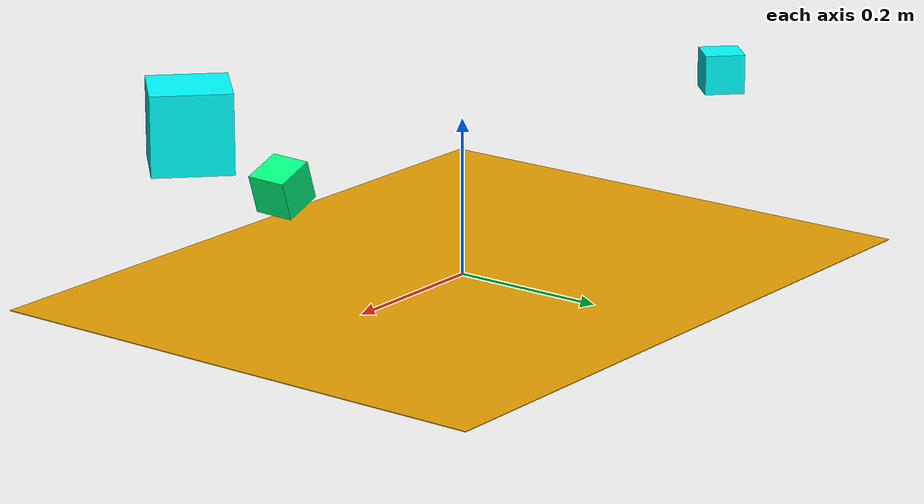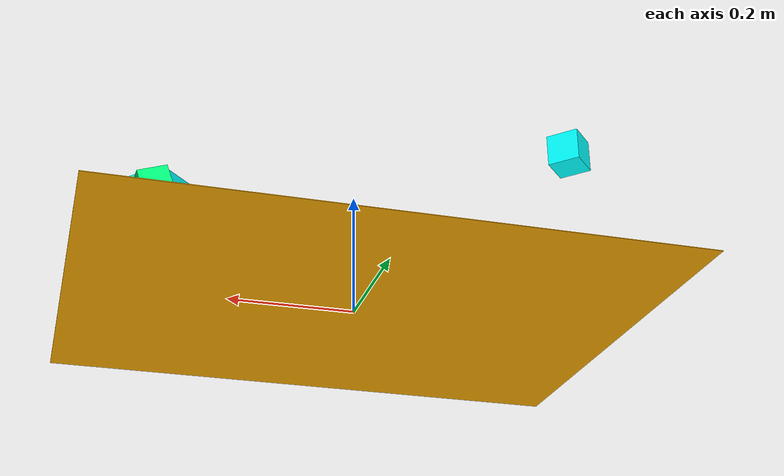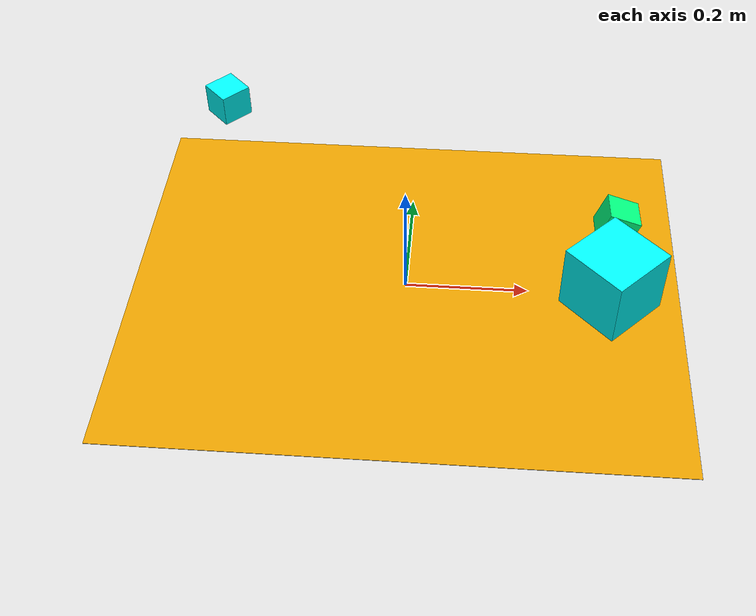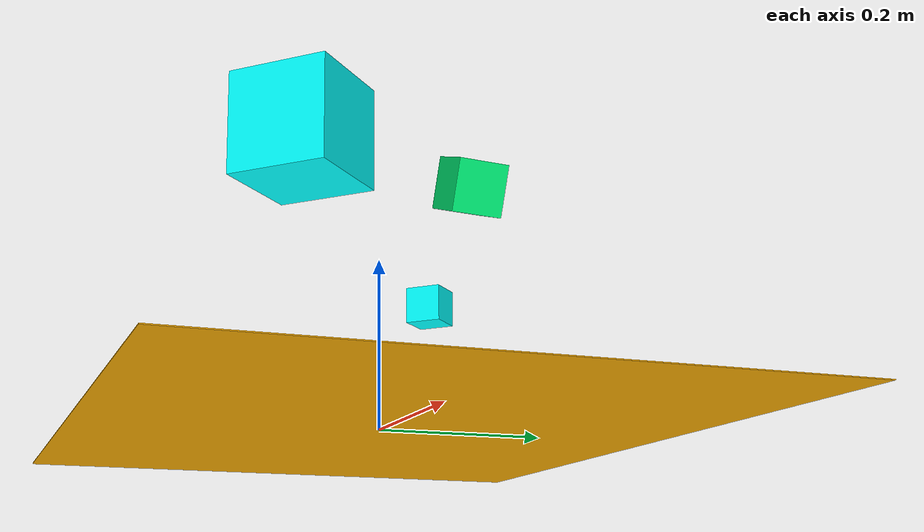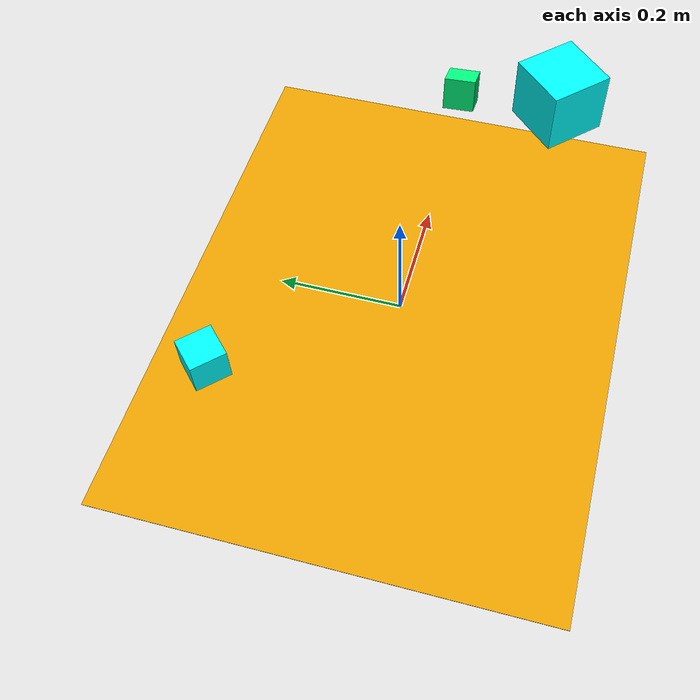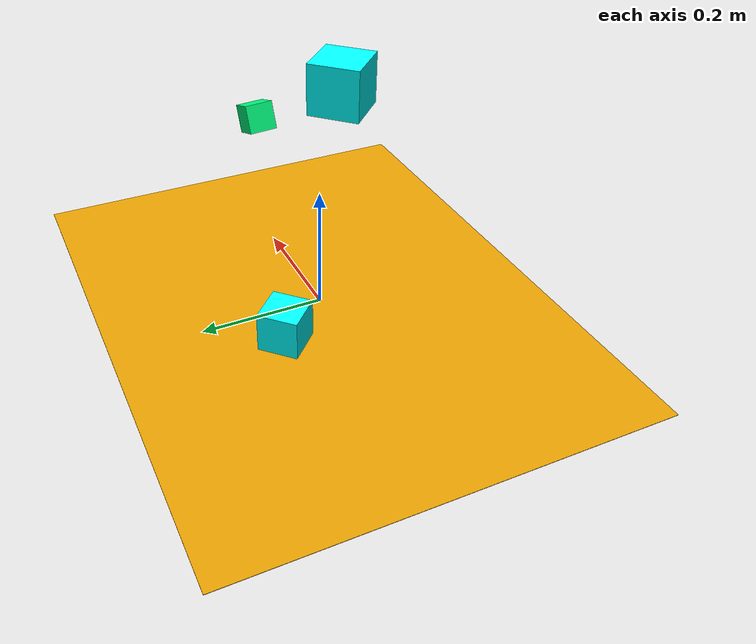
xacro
<?xml version="1.0"?>
<robot xmlns:xacro="http://ros.org/wiki/xacro"
		name="lxind">

    <!-- servo4: smaller robot -->

	<!-- const -->
	<xacro:property name="M_PI" value="3.1415926" />

	<!-- base -->
	<link name="base_footprint">
		<visual>
			<geometry>
				<box size="0.892 0.692 0.001" />
			</geometry>
		</visual>
	</link>

	<link name="base_link">
		<visual>
			<geometry>
				<box size="0.892 0.692 0.001" />
			</geometry>
			<material name="green">
				<color rgba="0 1 0 1" />
			</material>
		</visual>
	</link>

	<link name="laser_link">
		<visual>
			<geometry>
				<box size="0.1 0.1 0.1" />
			</geometry>
			<material name="gb">
				<color rgba="0 1 1 1" />
			</material>
		</visual>
	</link>
	<link name="back_laser_link">
		<visual>
			<geometry>
				<box size="0.05 0.05 0.05" />
			</geometry>
			<material name="gb">
				<color rgba="0 1 1 1" />
			</material>
		</visual>
	</link>

	<link name="FX3_link">
        <visual>
            <geometry>
                <box size="0.05 0.05 0.05" />
            </geometry>
            <material name="g05b">
                <color rgba="0 1 0.5 1" />
            </material>
        </visual>
    </link>

<!-- JOINTS -->
	<joint name="base_joint" type="fixed">
		<origin rpy="0 0 0" xyz="0 0 0" />
		<parent link="base_footprint" />
		<child link="base_link" />
	</joint>  <!-- AT TOP SURF===> NOW: FLOOR same -->

	<joint name="base_laser_joint" type="fixed">
		<origin rpy="0 0 ${-M_PI * 0.25}" xyz="0.3 -0.18 0.228" />   <!-- xy offset from centre of driving wheel -->
		<parent link="base_link" />
		<child link="laser_link" />
	</joint>

	<joint name="base_back_laser_joint" type="fixed">
		<origin rpy="0 0 ${M_PI * 0.75}" xyz="-0.3 0.18 0.228" />   <!-- xy offset from centre of driving wheel -->
		<parent link="base_link" />
		<child link="back_laser_link" />
	</joint>

	<joint name="base_lxtof_joint" type="fixed">
		<origin rpy="${M_PI*0.61} ${M_PI*0.01} ${M_PI*0.51}" xyz="0.32 -0.02 0.185" /> <!-- around red/green/blue axis -->
            <!--  around y axis(minus ->toward ground), x(ros axis), z  ${M_PI/4} -->
		<parent link="base_link" />
		<child link="FX3_link" />
	</joint>
</robot>
